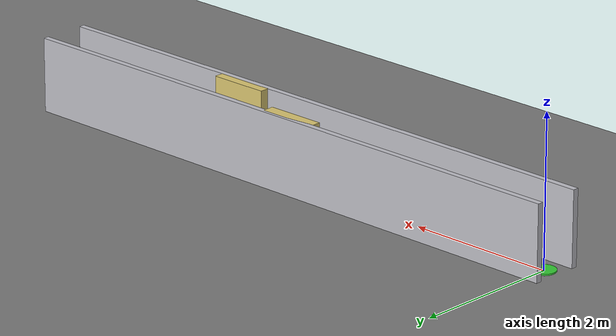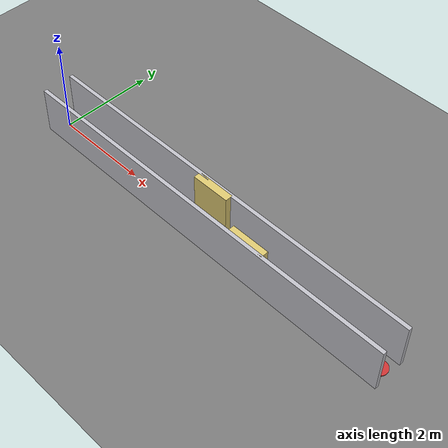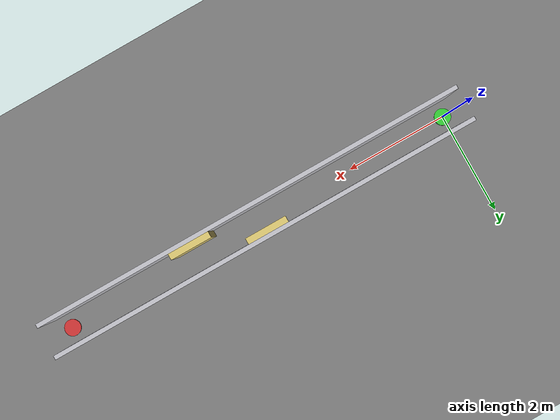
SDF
<?xml version="1.0"?>
<sdf version="1.8">
  <world name="baseline_narrow_corridor">
    <physics name="1ms" type="ignored">
      <max_step_size>0.001</max_step_size>
      <real_time_factor>1.0</real_time_factor>
    </physics>
    <plugin filename="gz-sim-physics-system" name="gz::sim::systems::Physics"/>
    <plugin filename="gz-sim-sensors-system" name="gz::sim::systems::Sensors">
      <render_engine>ogre2</render_engine>
    </plugin>
    <plugin filename="gz-sim-user-commands-system" name="gz::sim::systems::UserCommands"/>
    <plugin filename="gz-sim-scene-broadcaster-system" name="gz::sim::systems::SceneBroadcaster"/>

    <gravity>0 0 -9.81</gravity>

    <light name="sun" type="directional">
      <cast_shadows>true</cast_shadows>
      <pose>0 0 10 0 0 0</pose>
      <diffuse>0.8 0.8 0.8 1</diffuse>
      <specular>0.2 0.2 0.2 1</specular>
      <attenuation>
        <range>1000</range>
        <constant>0.9</constant>
        <linear>0.01</linear>
        <quadratic>0.001</quadratic>
      </attenuation>
      <direction>-0.5 0.1 -0.9</direction>
    </light>

    <model name="ground_plane">
      <static>true</static>
      <link name="link">
        <collision name="collision">
          <geometry>
            <plane>
              <normal>0 0 1</normal>
              <size>100 100</size>
            </plane>
          </geometry>
        </collision>
        <visual name="visual">
          <geometry>
            <plane>
              <normal>0 0 1</normal>
              <size>100 100</size>
            </plane>
          </geometry>
          <material>
            <ambient>0.48 0.48 0.48 1</ambient>
            <diffuse>0.48 0.48 0.48 1</diffuse>
          </material>
        </visual>
      </link>
    </model>

    <model name="wall_left_long">
      <static>true</static>
      <pose>4.0 0.315 0.5 0 0 0</pose>
      <link name="link">
        <collision name="collision"><geometry><box><size>8.4 0.08 1.0</size></box></geometry></collision>
        <visual name="visual"><geometry><box><size>8.4 0.08 1.0</size></box></geometry><material><ambient>0.75 0.75 0.78 1</ambient><diffuse>0.75 0.75 0.78 1</diffuse></material></visual>
      </link>
    </model>

    <model name="wall_right_long">
      <static>true</static>
      <pose>4.0 -0.315 0.5 0 0 0</pose>
      <link name="link">
        <collision name="collision"><geometry><box><size>8.4 0.08 1.0</size></box></geometry></collision>
        <visual name="visual"><geometry><box><size>8.4 0.08 1.0</size></box></geometry><material><ambient>0.75 0.75 0.78 1</ambient><diffuse>0.75 0.75 0.78 1</diffuse></material></visual>
      </link>
    </model>

    <model name="offset_narrow_upper">
      <static>true</static>
      <pose>3.9 0.235 0.5 0 0 0</pose>
      <link name="link">
        <collision name="collision"><geometry><box><size>0.8 0.16 1.0</size></box></geometry></collision>
        <visual name="visual"><geometry><box><size>0.8 0.16 1.0</size></box></geometry><material><ambient>0.86 0.78 0.44 1</ambient><diffuse>0.86 0.78 0.44 1</diffuse></material></visual>
      </link>
    </model>

    <model name="offset_narrow_lower">
      <static>true</static>
      <pose>5.2 -0.235 0.5 0 0 0</pose>
      <link name="link">
        <collision name="collision"><geometry><box><size>0.8 0.16 1.0</size></box></geometry></collision>
        <visual name="visual"><geometry><box><size>0.8 0.16 1.0</size></box></geometry><material><ambient>0.86 0.78 0.44 1</ambient><diffuse>0.86 0.78 0.44 1</diffuse></material></visual>
      </link>
    </model>

    <model name="start_marker">
      <static>true</static>
      <pose>0.0 0.0 0.01 0 0 0</pose>
      <link name="link">
        <visual name="visual"><geometry><cylinder><radius>0.16</radius><length>0.02</length></cylinder></geometry><material><ambient>0.2 0.8 0.2 1</ambient><diffuse>0.2 0.8 0.2 1</diffuse></material></visual>
      </link>
    </model>

    <model name="goal_marker">
      <static>true</static>
      <pose>8.0 0.0 0.01 0 0 0</pose>
      <link name="link">
        <visual name="visual"><geometry><cylinder><radius>0.16</radius><length>0.02</length></cylinder></geometry><material><ambient>0.8 0.2 0.2 1</ambient><diffuse>0.8 0.2 0.2 1</diffuse></material></visual>
      </link>
    </model>
  </world>
</sdf>
